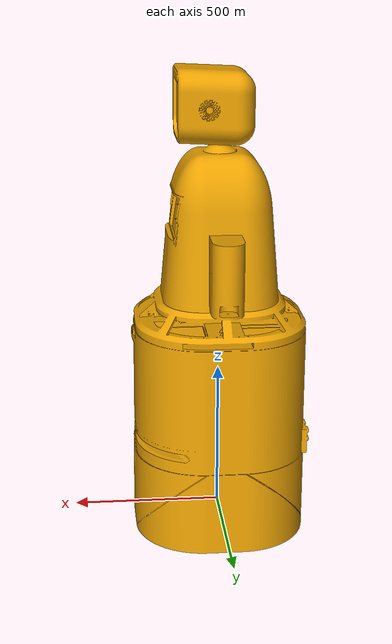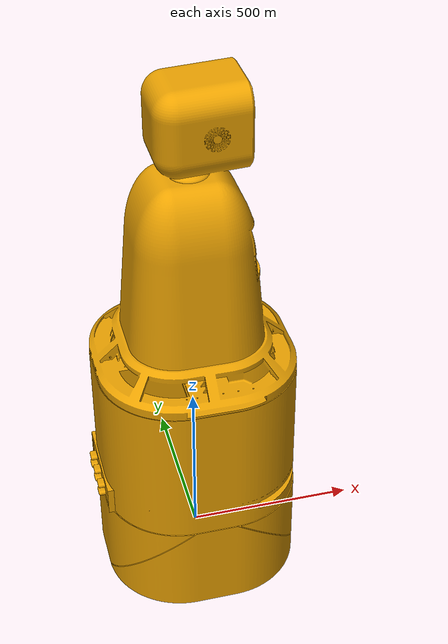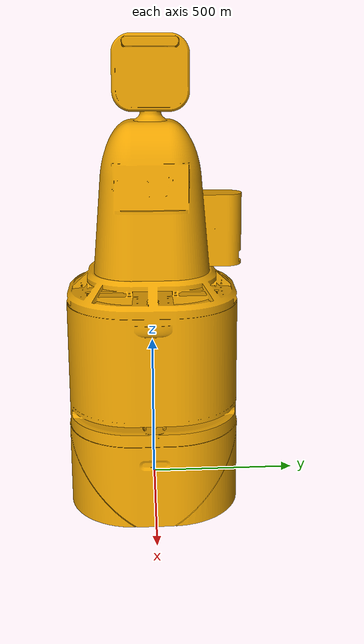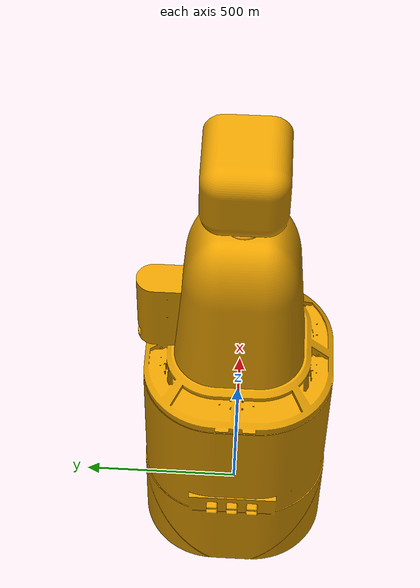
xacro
<?xml version="1.0" ?>
<robot name="uvix" xmlns:xacro="http://www.ros.org/wiki/xacro">

    <xacro:include filename="$(find Uvix_sim)/urdf/materials.xacro" />
    <xacro:include filename="$(find Uvix_sim)/urdf/uvix.gazebo" />

    <link name="base_link">
        <inertial>
            <origin xyz="0.002 0.001 0.426" rpy="0 0 0" />
            <mass value="59.827" />
            <inertia ixx="10.328" ixy="0.0"    ixz="-0.061"
                                  iyy="10.479" iyz="0.25"
                                               izz="2.759" />
        </inertial>
        <visual name="base_link_visual">
            <origin xyz="0 0 0" rpy="0 0 0" />
            <geometry>
                <mesh filename="package://Uvix_sim/meshes/base_link.dae" scale="1 1 1" />
            </geometry>
        </visual>
        <collision name="base_link_collision">
            <origin xyz="0 0 0" rpy="0 0 0" />
            <geometry>
                <mesh filename="package://Uvix_sim/meshes/base_link.stl" scale="0.001 0.001 0.001" />
            </geometry>
        </collision>
    </link>

    <!-- ===================== RUEDAS DE TRACCIÓN ====================== -->
    <!-- Rueda derecha (VERDE) -->
    <link name="wheel_right_link">
        <inertial>
            <origin xyz="0 0 0" rpy="0 0 0" />
            <mass value="2.660" />
            <inertia ixx="0.005" ixy="2.126e-08" ixz="2.319e-07"
                                 iyy="0.005"     iyz="-4.751e-09"
                                                 izz="0.008" />
        </inertial>
        <visual name="wheel_right_visual">
            <origin xyz="0 0 0" rpy="0 0 0" />
            <geometry>
                <mesh filename="package://Uvix_sim/meshes/Rueda_derecha.stl" scale="0.001 0.001 0.001" />
            </geometry>
            <material name="verde_rueda_derecha">
                <color rgba="0.000 1.000 0.000 1.000" />
            </material>
        </visual>
        <collision name="wheel_right_collision">
            <origin xyz="0 0 0" rpy="0 0 0" />
            <geometry>
                <mesh filename="package://Uvix_sim/meshes/Rueda_derecha.stl" scale="0.001 0.001 0.001" />
            </geometry>
        </collision>
    </link>
    <!-- Rueda izquierda (ROJA) -->
    <link name="wheel_left_link">
        <inertial>
            <origin xyz="0 0 0" rpy="0 0 0" />
            <mass value="2.660" />
            <inertia ixx="0.005" ixy="1.382e-08" ixz="-1.931e-07"
                                 iyy="0.005"     iyz="4.234e-09"
                                                 izz="0.008" />
        </inertial>
        <visual name="wheel_left_visual">
            <origin xyz="0 0 0" rpy="0 0 0" />
            <geometry>
                <mesh filename="package://Uvix_sim/meshes/Rueda_izquierda.stl" scale="0.001 0.001 0.001" />
            </geometry>
            <material name="rojo_rueda_izquierda">
                <color rgba="1.000 0.000 0.000 1.000" />
            </material>
        </visual>
        <collision name="wheel_left_collision">
            <origin xyz="0 0 0" rpy="0 0 0" />
            <geometry>
                <mesh filename="package://Uvix_sim/meshes/Rueda_izquierda.stl" scale="0.001 0.001 0.001" />
            </geometry>
        </collision>
    </link>
    <!-- ================ CASTERS (soportes giratorios) ================= -->
    <link name="rear_caster_right_link">
        <inertial>
            <origin xyz="0.0 0.016 -0.035" rpy="0 0 0" />
            <mass value="0.2" />
            <inertia ixx="0.00024" ixy="1.445e-7" ixz="-1.403e-7"
                                  iyy="0.0002" iyz="8.218e-5"
                                               izz="0.00014" />
        </inertial>
        <visual name="rear_caster_right_visual">
            <origin xyz="0 0 0" rpy="0 0 0" />
            <geometry>
                <mesh filename="package://Uvix_sim/meshes/Caster_road.stl" scale="0.001 0.001 0.001" />
            </geometry>
            <material name="amarillo_caster">
                <color rgba="1.000 1.000 0.000 1.000" />
            </material>
        </visual>
        <collision name="rear_caster_right_collision">
            <origin xyz="0 0 0" rpy="0 0 0" />
            <geometry>
                <mesh filename="package://Uvix_sim/meshes/Caster_road.stl" scale="0.001 0.001 0.001" />
            </geometry>
        </collision>
    </link>
    <link name="rear_caster_left_link">
        <inertial>
            <origin xyz="0.0 0.016 -0.035" rpy="0 0 0" />
            <mass value="0.2" />
            <inertia ixx="0.00024" ixy="1.445e-7" ixz="-1.403e-7"
                                  iyy="0.0002" iyz="8.218e-5"
                                               izz="0.00014" />
        </inertial>
        <visual name="rear_caster_left_visual">
            <origin xyz="0 0 0" rpy="0 0 0" />
            <geometry>
                <mesh filename="package://Uvix_sim/meshes/Caster_road.stl" scale="0.001 0.001 0.001" />
            </geometry>
            <material name="amarillo_caster">
                <color rgba="1.000 1.000 0.000 1.000" />
            </material>
        </visual>
        <collision name="rear_caster_left_collision">
            <origin xyz="0 0 0" rpy="0 0 0" />
            <geometry>
                <mesh filename="package://Uvix_sim/meshes/Caster_road.stl" scale="0.001 0.001 0.001" />
            </geometry>
        </collision>
    </link>
    <link name="front_caster_right_link">
        <inertial>
            <origin xyz="0.0 0.016 -0.035" rpy="0 0 0" />
            <mass value="0.2" />
            <inertia ixx="0.00024" ixy="1.445e-7" ixz="-1.403e-7"
                                  iyy="0.0002" iyz="8.218e-5"
                                               izz="0.00014" />
        </inertial>
        <visual name="front_caster_right_visual">
            <origin xyz="0 0 0" rpy="0 0 0" />
            <geometry>
                <mesh filename="package://Uvix_sim/meshes/Caster_road.stl" scale="0.001 0.001 0.001" />
            </geometry>
            <material name="amarillo_caster">
                <color rgba="1.000 1.000 0.000 1.000" />
            </material>
        </visual>
        <collision name="front_caster_right_collision">
            <origin xyz="0 0 0" rpy="0 0 0" />
            <geometry>
                <mesh filename="package://Uvix_sim/meshes/Caster_road.stl" scale="0.001 0.001 0.001" />
            </geometry>
        </collision>
    </link>
    <link name="front_caster_left_link">
        <inertial>
            <origin xyz="0.0 0.016 -0.035" rpy="0 0 0" />
            <mass value="0.2" />
            <inertia ixx="0.00024" ixy="1.445e-7" ixz="-1.403e-7"
                                  iyy="0.0002" iyz="8.218e-5"
                                               izz="0.00014" />
        </inertial>
        <visual name="front_caster_left_visual">
            <origin xyz="0 0 0" rpy="0 0 0" />
            <geometry>
                <mesh filename="package://Uvix_sim/meshes/Caster_road.stl" scale="0.001 0.001 0.001" />
            </geometry>
            <material name="amarillo_caster">
                <color rgba="1.000 1.000 0.000 1.000" />
            </material>
        </visual>
        <collision name="front_caster_left_collision">
            <origin xyz="0 0 0" rpy="0 0 0" />
            <geometry>
                <mesh filename="package://Uvix_sim/meshes/Caster_road.stl" scale="0.001 0.001 0.001" />
            </geometry>
        </collision>
    </link>
    <!-- ================= ROADS (ruedas locas) ======================== -->
    <link name="rear_road_right_link">
        <inertial>
            <origin xyz="0 0 0" rpy="0 0 0" />
            <mass value="0.098" />
            <inertia ixx="7.464e-5" ixy="0.0" ixz="0.0"
                                    iyy="4.448e-5" iyz="0.0"
                                                   izz="4.448e-5" />
        </inertial>
        <visual name="rear_road_right_visual">
            <origin xyz="0 0 0" rpy="0 0 0" />
            <geometry>
                <mesh filename="package://Uvix_sim/meshes/road.stl" scale="0.001 0.001 0.001" />
            </geometry>
            <material name="magenta_road">
                <color rgba="1.000 0.000 1.000 1.000" />
            </material>
        </visual>
        <collision name="rear_road_right_collision">
            <origin xyz="0 0 0" rpy="0 0 0" />
            <geometry>
                <mesh filename="package://Uvix_sim/meshes/road.stl" scale="0.001 0.001 0.001" />
            </geometry>
        </collision>
    </link>
    <link name="rear_road_left_link">
        <inertial>
            <origin xyz="0 0 0" rpy="0 0 0" />
            <mass value="0.098" />
            <inertia ixx="7.464e-5" ixy="0.0" ixz="0.0"
                                    iyy="4.448e-5" iyz="0.0"
                                                   izz="4.448e-5" />
        </inertial>
        <visual name="rear_road_left_visual">
            <origin xyz="0 0 0" rpy="0 0 0" />
            <geometry>
                <mesh filename="package://Uvix_sim/meshes/road.stl" scale="0.001 0.001 0.001" />
            </geometry>
            <material name="magenta_road">
                <color rgba="1.000 0.000 1.000 1.000" />
            </material>
        </visual>
        <collision name="rear_road_left_collision">
            <origin xyz="0 0 0" rpy="0 0 0" />
            <geometry>
                <mesh filename="package://Uvix_sim/meshes/road.stl" scale="0.001 0.001 0.001" />
            </geometry>
        </collision>
    </link>
    <link name="front_road_right_link">
        <inertial>
            <origin xyz="0 0 0" rpy="0 0 0" />
            <mass value="0.098" />
            <inertia ixx="7.464e-5" ixy="0.0" ixz="0.0"
                                    iyy="4.448e-5" iyz="0.0"
                                                   izz="4.448e-5" />
        </inertial>
        <visual name="front_road_right_visual">
            <origin xyz="0 0 0" rpy="0 0 0" />
            <geometry>
                <mesh filename="package://Uvix_sim/meshes/road.stl" scale="0.001 0.001 0.001" />
            </geometry>
            <material name="magenta_road">
                <color rgba="1.000 0.000 1.000 1.000" />
            </material>
        </visual>
        <collision name="front_road_right_collision">
            <origin xyz="0 0 0" rpy="0 0 0" />
            <geometry>
                <mesh filename="package://Uvix_sim/meshes/road.stl" scale="0.001 0.001 0.001" />
            </geometry>
        </collision>
    </link>
    <link name="front_road_left_link">
        <inertial>
            <origin xyz="0 0 0" rpy="0 0 0" />
            <mass value="0.098" />
            <inertia ixx="7.464e-5" ixy="0.0" ixz="0.0"
                                    iyy="4.448e-5" iyz="0.0"
                                                   izz="4.448e-5" />
        </inertial>
        <visual name="front_road_left_visual">
            <origin xyz="0 0 0" rpy="0 0 0" />
            <geometry>
                <mesh filename="package://Uvix_sim/meshes/road.stl" scale="0.001 0.001 0.001" />
            </geometry>
            <material name="magenta_road">
                <color rgba="1.000 0.000 1.000 1.000" />
            </material>
        </visual>
        <collision name="front_road_left_collision">
            <origin xyz="0 0 0" rpy="0 0 0" />
            <geometry>
                <mesh filename="package://Uvix_sim/meshes/road.stl" scale="0.001 0.001 0.001" />
            </geometry>
        </collision>
    </link>
    <!-- ===================== SENSORES ULTRASONICOS ====================== -->
    <link name="us_front_right_link">
        <inertial>
            <origin xyz="-0.018 0 0" rpy="0 0 0"/>
            <mass value="0.01"/>
            <inertia ixx="1e-6" ixy="0" ixz="0" iyy="1e-6" iyz="0" izz="1e-6"/>
        </inertial>
        <visual name="us_front_right_housing">
            <origin xyz="-0.020 0 0" rpy="0 0 0"/>
            <geometry><box size="0.020 0.045 0.014"/></geometry>
        </visual>
        <visual name="us_front_right_ear_left">
            <origin xyz="-0.0285 0.0285 0" rpy="0 0 0"/>
            <geometry><box size="0.003 0.012 0.014"/></geometry>
        </visual>
        <visual name="us_front_right_ear_right">
            <origin xyz="-0.0285 -0.0285 0" rpy="0 0 0"/>
            <geometry><box size="0.003 0.012 0.014"/></geometry>
        </visual>
        <visual name="us_front_right_transducer">
            <origin xyz="-0.005 0 0" rpy="0 1.5707963 0"/>
            <geometry><cylinder radius="0.008" length="0.010"/></geometry>
        </visual>
    </link>
    <link name="us_front_left_link">
        <inertial>
            <origin xyz="-0.018 0 0" rpy="0 0 0"/>
            <mass value="0.01"/>
            <inertia ixx="1e-6" ixy="0" ixz="0" iyy="1e-6" iyz="0" izz="1e-6"/>
        </inertial>
        <visual name="us_front_left_housing">
            <origin xyz="-0.020 0 0" rpy="0 0 0"/>
            <geometry><box size="0.020 0.045 0.014"/></geometry>
        </visual>
        <visual name="us_front_left_ear_left">
            <origin xyz="-0.0285 0.0285 0" rpy="0 0 0"/>
            <geometry><box size="0.003 0.012 0.014"/></geometry>
        </visual>
        <visual name="us_front_left_ear_right">
            <origin xyz="-0.0285 -0.0285 0" rpy="0 0 0"/>
            <geometry><box size="0.003 0.012 0.014"/></geometry>
        </visual>
        <visual name="us_front_left_transducer">
            <origin xyz="-0.005 0 0" rpy="0 1.5707963 0"/>
            <geometry><cylinder radius="0.008" length="0.010"/></geometry>
        </visual>
    </link>
    <link name="us_rear_right_link">
        <inertial>
            <origin xyz="-0.018 0 0" rpy="0 0 0"/>
            <mass value="0.01"/>
            <inertia ixx="1e-6" ixy="0" ixz="0" iyy="1e-6" iyz="0" izz="1e-6"/>
        </inertial>
        <visual name="us_rear_right_housing">
            <origin xyz="-0.020 0 0" rpy="0 0 0"/>
            <geometry><box size="0.020 0.045 0.014"/></geometry>
        </visual>
        <visual name="us_rear_right_ear_left">
            <origin xyz="-0.0285 0.0285 0" rpy="0 0 0"/>
            <geometry><box size="0.003 0.012 0.014"/></geometry>
        </visual>
        <visual name="us_rear_right_ear_right">
            <origin xyz="-0.0285 -0.0285 0" rpy="0 0 0"/>
            <geometry><box size="0.003 0.012 0.014"/></geometry>
        </visual>
        <visual name="us_rear_right_transducer">
            <origin xyz="-0.005 0 0" rpy="0 1.5707963 0"/>
            <geometry><cylinder radius="0.008" length="0.010"/></geometry>
        </visual>
    </link>
    <link name="us_rear_left_link">
        <inertial>
            <origin xyz="-0.018 0 0" rpy="0 0 0"/>
            <mass value="0.01"/>
            <inertia ixx="1e-6" ixy="0" ixz="0" iyy="1e-6" iyz="0" izz="1e-6"/>
        </inertial>
        <visual name="us_rear_left_housing">
            <origin xyz="-0.020 0 0" rpy="0 0 0"/>
            <geometry><box size="0.020 0.045 0.014"/></geometry>
        </visual>
        <visual name="us_rear_left_ear_left">
            <origin xyz="-0.0285 0.0285 0" rpy="0 0 0"/>
            <geometry><box size="0.003 0.012 0.014"/></geometry>
        </visual>
        <visual name="us_rear_left_ear_right">
            <origin xyz="-0.0285 -0.0285 0" rpy="0 0 0"/>
            <geometry><box size="0.003 0.012 0.014"/></geometry>
        </visual>
        <visual name="us_rear_left_transducer">
            <origin xyz="-0.005 0 0" rpy="0 1.5707963 0"/>
            <geometry><cylinder radius="0.008" length="0.010"/></geometry>
        </visual>
    </link>
    <!-- ===================== SENSOR LIDAR====================== -->
    <link name="lidar_link">
        <inertial>
            <origin xyz="0.0 -0.00097 -0.01136" rpy="0 0 0"/>
            <mass value="0.15165"/>
            <inertia ixx="6.905e-5" ixy="-2.929e-8" ixz="-8.493e-9" iyy="6.910e-5" iyz="1.667e-6" izz="0.0001"/>
        </inertial>
        <visual name="lidar_visual">
            <origin xyz="0.0 0.0 0.0" rpy="0.0 0.0 0.0"/>
            <geometry>
                <mesh filename="package://Uvix_sim/meshes/lidar.stl" scale="0.001 0.001 0.001" />
            </geometry>
        </visual>

    </link>
    <!-- ===================== CAMARAS ====================== -->
    <link name="camera_lower_link">
        <inertial>
            <origin xyz="-0.010 0 0" rpy="0 0 0"/>
            <mass value="0.05"/>
            <inertia ixx="1e-5" ixy="0" ixz="0" iyy="1e-5" iyz="0" izz="1e-5"/>
        </inertial>
        <visual name="camera_lower_visual">
            <origin xyz="-0.010 0 0" rpy="0 1.5707963 0"/>
            <geometry><cylinder radius="0.015" length="0.020"/></geometry>
        </visual>
    </link>
    <link name="camera_lower_optical_link"/>
    <link name="camera_upper_link">
        <inertial>
            <origin xyz="-0.010 0 0" rpy="0 0 0"/>
            <mass value="0.05"/>
            <inertia ixx="1e-5" ixy="0" ixz="0" iyy="1e-5" iyz="0" izz="1e-5"/>
        </inertial>
        <visual name="camera_upper_visual">
            <origin xyz="-0.010 0 0" rpy="0 1.5707963 0"/>
            <geometry><cylinder radius="0.015" length="0.020"/></geometry>
        </visual>
    </link>
    <link name="camera_upper_optical_link"/>
    <link name="camera_aux_front_link">
        <inertial>
            <origin xyz="-0.010 0 0" rpy="0 0 0"/>
            <mass value="0.05"/>
            <inertia ixx="1e-5" ixy="0" ixz="0" iyy="1e-5" iyz="0" izz="1e-5"/>
        </inertial>
        <visual name="camera_aux_front_visual">
            <origin xyz="-0.010 0 0" rpy="0 1.5707963 0"/>
            <geometry><cylinder radius="0.015" length="0.020"/></geometry>
        </visual>
    </link>
    <link name="camera_aux_front_optical_link"/>
    <link name="camera_aux_right_link">
        <inertial>
            <origin xyz="-0.010 0 0" rpy="0 0 0"/>
            <mass value="0.05"/>
            <inertia ixx="1e-5" ixy="0" ixz="0" iyy="1e-5" iyz="0" izz="1e-5"/>
        </inertial>
        <visual name="camera_aux_right_visual">
            <origin xyz="-0.010 0 0" rpy="0 1.5707963 0"/>
            <geometry><cylinder radius="0.015" length="0.020"/></geometry>
        </visual>
    </link>
    <link name="camera_aux_right_optical_link"/>
    <!-- ===================== FOOTPRINT ====================== -->
    <link name="base_footprint"/>
    <!-- ===================== IMU ====================== -->
    <link name="imu_link">
        <inertial>
            <origin xyz="0 0 0" rpy="0 0 0"/>
            <mass value="0.01"/>
            <inertia ixx="1e-6" ixy="0" ixz="0" iyy="1e-6" iyz="0" izz="1e-6"/>
        </inertial>
        <visual name="imu_visual">
            <origin xyz="0 0 0" rpy="0 0 0"/>
            <geometry><box size="0.025 0.025 0.005"/></geometry>
        </visual>
    </link>

    <!-- ===================== RUEDAS DE TRACCIÓN ====================== -->
    <joint name="base_link_wheel_right_joint" type="continuous">
        <parent link="base_link" />
        <child  link="wheel_right_link" />
        <origin xyz="-0.2365 0.0 0.006" rpy="0 -1.5707963267948966 0" />
        <axis   xyz="0 0 -1" />
    </joint>
    <joint name="base_link_wheel_left_joint" type="continuous">
        <parent link="base_link" />
        <child  link="wheel_left_link" />
        <origin xyz="0.2365 0.0 0.006" rpy="0 -1.5707963267948966 0" />
        <axis   xyz="0 0 -1" />
    </joint>
    <!-- ================ BASE -> CASTERS (giro en Z) =================== -->
    <joint name="base_link_rear_caster_right_joint" type="continuous">
        <parent link="base_link" />
        <child  link="rear_caster_right_link" />
        <origin xyz="-0.112 0.178 0.03" rpy="0 0 0" />
        <axis   xyz="0 0 1" />
    </joint>
    <joint name="base_link_rear_caster_left_joint" type="continuous">
        <parent link="base_link" />
        <child  link="rear_caster_left_link" />
        <origin xyz="0.112 0.178 0.03" rpy="0 0 0" />
        <axis   xyz="0 0 1" />
    </joint>
    <joint name="base_link_front_caster_right_joint" type="continuous">
        <parent link="base_link" />
        <child  link="front_caster_right_link" />
        <origin xyz="-0.112 -0.178 0.03" rpy="0 0 0" />
        <axis   xyz="0 0 1" />
    </joint>
    <joint name="base_link_front_caster_left_joint" type="continuous">
        <parent link="base_link" />
        <child  link="front_caster_left_link" />
        <origin xyz="0.112 -0.178 0.03" rpy="0 0 0" />
        <axis   xyz="0 0 1" />
    </joint>
    <!-- ============== CASTERS -> ROADS (giro en X) =================== -->
    <joint name="rear_caster_right_link_rear_road_right_joint" type="continuous">
        <parent link="rear_caster_right_link" />
        <child  link="rear_road_right_link" />
        <origin xyz="0.0 0.037 -0.071" rpy="0 0 0" />
        <axis   xyz="1 0 0" />
    </joint>
    <joint name="rear_caster_left_link_rear_road_left_joint" type="continuous">
        <parent link="rear_caster_left_link" />
        <child  link="rear_road_left_link" />
        <origin xyz="0.0 0.037 -0.071" rpy="0 0 0" />
        <axis   xyz="1 0 0" />
    </joint>
    <joint name="front_caster_right_link_front_road_right_joint" type="continuous">
        <parent link="front_caster_right_link" />
        <child  link="front_road_right_link" />
        <origin xyz="0.0 0.037 -0.071" rpy="0 0 0" />
        <axis   xyz="1 0 0" />
    </joint>
    <joint name="front_caster_left_link_front_road_left_joint" type="continuous">
        <parent link="front_caster_left_link" />
        <child  link="front_road_left_link" />
        <origin xyz="0.0 0.037 -0.071" rpy="0 0 0" />
        <axis   xyz="1 0 0" />
    </joint>
    <!-- ============== SENSORES ULTRASONICOS =================== -->
    <joint name="base_link_us_front_right_joint" type="fixed">
        <parent link="base_link"/>
        <child  link="us_front_right_link"/>
        <origin xyz="-0.224 -0.224 0.0065" rpy="0 0 -2.35619449"/>
    </joint>
    <joint name="base_link_us_front_left_joint" type="fixed">
        <parent link="base_link"/>
        <child  link="us_front_left_link"/>
        <origin xyz="0.224 -0.224 0.0065" rpy="0 0 -0.78539816"/>
    </joint>
    <joint name="base_link_us_rear_right_joint" type="fixed">
        <parent link="base_link"/>
        <child  link="us_rear_right_link"/>
        <origin xyz="-0.224 0.224 0.0065" rpy="0 0 2.35619449"/>
    </joint>
    <joint name="base_link_us_rear_left_joint" type="fixed">
        <parent link="base_link"/>
        <child  link="us_rear_left_link"/>
        <origin xyz="0.224 0.224 0.0065" rpy="0 0 0.78539816"/>
    </joint>
    <!-- ===================== SENSOR LIDAR====================== -->
    <joint name="base_link_lidar_joint" type="fixed">
        <parent link="base_link"/>
        <child  link="lidar_link"/>
        <origin xyz="0.0 -0.23765 0.288" rpy="0 0 -1.5707963267"/>
    </joint>
    <!-- ===================== CAMARAS ====================== -->
    <joint name="base_link_camera_joint" type="fixed">
        <parent link="base_link"/>
        <child  link="camera_lower_link"/>
        <origin xyz="0.0 -0.28521 0.16279" rpy="0 0 -1.5707963"/>
    </joint>
    <joint name="camera_lower_optical_joint" type="fixed">
        <parent link="camera_lower_link"/>
        <child  link="camera_lower_optical_link"/>
        <origin xyz="0 0 0" rpy="-1.5707963 0 -1.5707963"/>
    </joint>
    <joint name="base_link_camera_upper_joint" type="fixed">
        <parent link="base_link"/>
        <child  link="camera_upper_link"/>
        <origin xyz="0.00211 -0.15 1.50562" rpy="0 0 -1.5707963"/>   <!-- ajusta a tu posición -->
    </joint>
    <joint name="camera_upper_optical_joint" type="fixed">
        <parent link="camera_upper_link"/>
        <child  link="camera_upper_optical_link"/>
        <origin xyz="0 0 0" rpy="-1.5707963 0 -1.5707963"/>
    </joint>
    <joint name="base_link_camera_aux_front_joint" type="fixed">
        <parent link="base_link"/>
        <child  link="camera_aux_front_link"/>
        <origin xyz="0.0 -0.24305 0.7255" rpy="0 0 -1.5707963"/>
    </joint>
    <joint name="camera_aux_front_optical_joint" type="fixed">
        <parent link="camera_aux_front_link"/>
        <child  link="camera_aux_front_optical_link"/>
        <origin xyz="0 0 0" rpy="-1.5707963 0 -1.5707963"/>
    </joint>
    <joint name="base_link_camera_aux_right_joint" type="fixed">
        <parent link="base_link"/>
        <child  link="camera_aux_right_link"/>
        <origin xyz="-0.24305 0.0 0.7255" rpy="0 0 3.1415927"/>
    </joint>
    <joint name="camera_aux_right_optical_joint" type="fixed">
        <parent link="camera_aux_right_link"/>
        <child  link="camera_aux_right_optical_link"/>
        <origin xyz="0 0 0" rpy="-1.5707963 0 -1.5707963"/>
    </joint>
     <!-- ===================== FOOTPRINT ====================== -->
    <joint name="base_footprint_base_link_joint" type="fixed">
        <parent link="base_footprint"/>
        <child  link="base_link"/>
        <origin xyz="0 0 0.078" rpy="0 0 1.5707963"/>
    </joint>
    <!-- ===================== IMU ====================== -->
    <joint name="base_link_imu_joint" type="fixed">
        <parent link="base_link"/>
        <child  link="imu_link"/>
        <origin xyz="0.000 -0.00122 0.140" rpy="0 0 0"/>   <!-- centro de masa; ajusta si lo montas en otro lugar -->
    </joint>

    <!--  ROS2 CONTROL                                                    -->

    <ros2_control name="BobertGazeboSystem" type="system">
        <hardware>
            <plugin>gazebo_ros2_control/GazeboSystem</plugin>
        </hardware>

        <!-- Ruedas de tracción -->
        <joint name="base_link_wheel_right_joint">
            <command_interface name="velocity">
                <param name="min">-10.0</param>
                <param name="max">10.0</param>
            </command_interface>
            <state_interface name="position"/>
            <state_interface name="velocity"/>
        </joint>
        <joint name="base_link_wheel_left_joint">
            <command_interface name="velocity">
                <param name="min">-10.0</param>
                <param name="max">10.0</param>
            </command_interface>
            <state_interface name="position"/>
            <state_interface name="velocity"/>
        </joint>

        <!-- Casters (giro en Z) — solo state -->
        <joint name="base_link_rear_caster_right_joint">
            <state_interface name="position"/>
            <state_interface name="velocity"/>
        </joint>
        <joint name="base_link_rear_caster_left_joint">
            <state_interface name="position"/>
            <state_interface name="velocity"/>
        </joint>
        <joint name="base_link_front_caster_right_joint">
            <state_interface name="position"/>
            <state_interface name="velocity"/>
        </joint>
        <joint name="base_link_front_caster_left_joint">
            <state_interface name="position"/>
            <state_interface name="velocity"/>
        </joint>

        <!-- Roads / ruedas locas (giro en X) — solo state -->
        <joint name="rear_caster_right_link_rear_road_right_joint">
            <state_interface name="position"/>
            <state_interface name="velocity"/>
        </joint>
        <joint name="rear_caster_left_link_rear_road_left_joint">
            <state_interface name="position"/>
            <state_interface name="velocity"/>
        </joint>
        <joint name="front_caster_right_link_front_road_right_joint">
            <state_interface name="position"/>
            <state_interface name="velocity"/>
        </joint>
        <joint name="front_caster_left_link_front_road_left_joint">
            <state_interface name="position"/>
            <state_interface name="velocity"/>
        </joint>
    </ros2_control>

</robot>

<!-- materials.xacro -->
<robot name="uvix" xmlns:xacro="http://www.ros.org/wiki/xacro" >

  <material name="silver">
    <color rgba="0.700 0.700 0.700 1.000"/>
  </material>

  <material name="blanco_pla">
    <color rgba="0.950 0.950 0.950 1.000"/>
  </material>

  <material name="negro_pla">
    <color rgba="0.150 0.150 0.150 1.000"/>
  </material>

  <material name="aluminio_brillante">
    <color rgba="0.850 0.850 0.880 1.000"/>
  </material>

  <material name="negro_caucho">
    <color rgba="0.050 0.050 0.050 1.000"/>
  </material>

  <material name="gris_pla">
    <color rgba="0.500 0.500 0.500 1.000"/>
  </material>

</robot>
